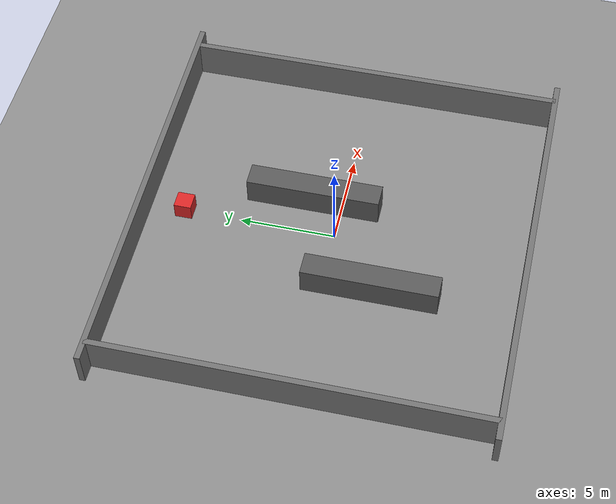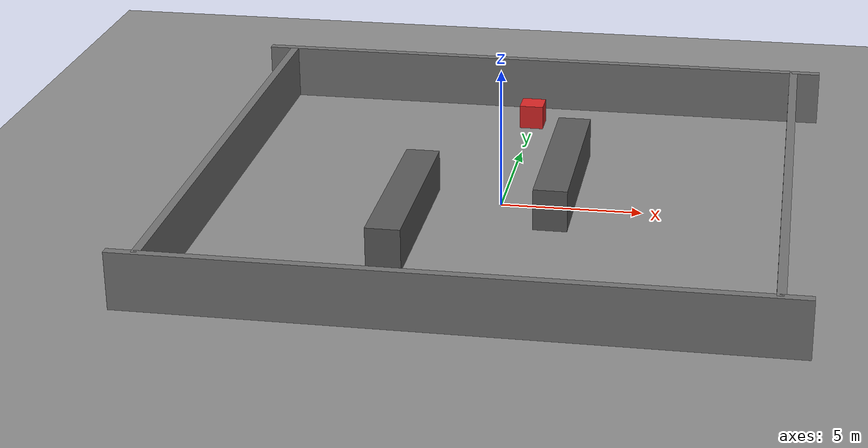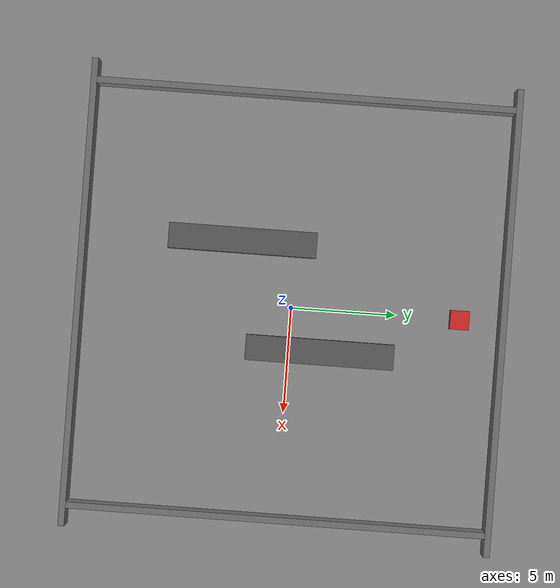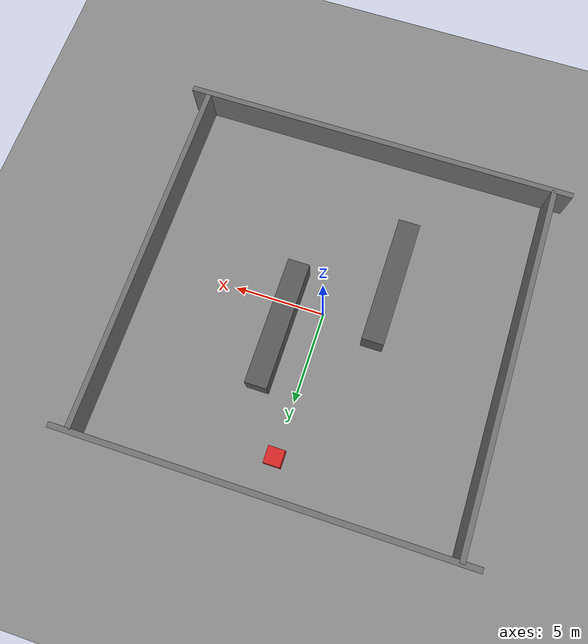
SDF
<?xml version="1.0" ?>
<sdf version="1.6">
  <world name="warehouse_lightweight">
    <gravity>0 0 -9.81</gravity>
    <physics type="ode" name="default_physics">
      <max_step_size>0.002</max_step_size>
      <real_time_factor>1.0</real_time_factor>
      <real_time_update_rate>500</real_time_update_rate>
    </physics>

    <scene>
      <ambient>0.5 0.5 0.5 1.0</ambient>
      <background>0.85 0.85 0.85 1.0</background>
      <shadows>false</shadows>
    </scene>

    <model name="ground_plane">
      <static>true</static>
      <link name="link">
        <collision name="collision">
          <geometry>
            <plane>
              <normal>0 0 1</normal>
              <size>50 50</size>
            </plane>
          </geometry>
        </collision>
        <visual name="visual">
          <geometry>
            <plane>
              <normal>0 0 1</normal>
              <size>50 50</size>
            </plane>
          </geometry>
          <material>
            <ambient>0.55 0.55 0.55 1.0</ambient>
            <diffuse>0.55 0.55 0.55 1.0</diffuse>
            <specular>0.0 0.0 0.0 1.0</specular>
          </material>
        </visual>
      </link>
    </model>

    <light name="warehouse_light" type="directional">
      <pose>0 0 12 0 0 0</pose>
      <diffuse>0.8 0.8 0.8 1.0</diffuse>
      <specular>0.1 0.1 0.1 1.0</specular>
      <direction>-0.2 0.1 -1.0</direction>
      <cast_shadows>false</cast_shadows>
    </light>

    <!-- Outer walls -->
    <model name="wall_north">
      <static>true</static>
      <pose>0 10 1.0 0 0 0</pose>
      <link name="link">
        <collision name="collision">
          <geometry><box><size>22 0.3 2.0</size></box></geometry>
        </collision>
        <visual name="visual">
          <geometry><box><size>22 0.3 2.0</size></box></geometry>
          <material><ambient>0.45 0.45 0.45 1</ambient><diffuse>0.45 0.45 0.45 1</diffuse></material>
        </visual>
      </link>
    </model>
    <model name="wall_south">
      <static>true</static>
      <pose>0 -10 1.0 0 0 0</pose>
      <link name="link">
        <collision name="collision">
          <geometry><box><size>22 0.3 2.0</size></box></geometry>
        </collision>
        <visual name="visual">
          <geometry><box><size>22 0.3 2.0</size></box></geometry>
          <material><ambient>0.45 0.45 0.45 1</ambient><diffuse>0.45 0.45 0.45 1</diffuse></material>
        </visual>
      </link>
    </model>
    <model name="wall_west">
      <static>true</static>
      <pose>-10 0 1.0 0 0 0</pose>
      <link name="link">
        <collision name="collision">
          <geometry><box><size>0.3 20 2.0</size></box></geometry>
        </collision>
        <visual name="visual">
          <geometry><box><size>0.3 20 2.0</size></box></geometry>
          <material><ambient>0.45 0.45 0.45 1</ambient><diffuse>0.45 0.45 0.45 1</diffuse></material>
        </visual>
      </link>
    </model>
    <model name="wall_east">
      <static>true</static>
      <pose>10 0 1.0 0 0 0</pose>
      <link name="link">
        <collision name="collision">
          <geometry><box><size>0.3 20 2.0</size></box></geometry>
        </collision>
        <visual name="visual">
          <geometry><box><size>0.3 20 2.0</size></box></geometry>
          <material><ambient>0.45 0.45 0.45 1</ambient><diffuse>0.45 0.45 0.45 1</diffuse></material>
        </visual>
      </link>
    </model>

    <!-- A few shelf-like obstacles (all plain gray). -->
    <model name="shelf_row_1">
      <static>true</static>
      <pose>-3.0 -2.5 0.75 0 0 0</pose>
      <link name="link">
        <collision name="collision"><geometry><box><size>1.2 7.0 1.5</size></box></geometry></collision>
        <visual name="visual"><geometry><box><size>1.2 7.0 1.5</size></box></geometry><material><ambient>0.35 0.35 0.35 1</ambient><diffuse>0.35 0.35 0.35 1</diffuse></material></visual>
      </link>
    </model>
    <model name="shelf_row_2">
      <static>true</static>
      <pose>2.0 1.5 0.75 0 0 0</pose>
      <link name="link">
        <collision name="collision"><geometry><box><size>1.2 7.0 1.5</size></box></geometry></collision>
        <visual name="visual"><geometry><box><size>1.2 7.0 1.5</size></box></geometry><material><ambient>0.35 0.35 0.35 1</ambient><diffuse>0.35 0.35 0.35 1</diffuse></material></visual>
      </link>
    </model>

    <model name="moving_center_box">
      <static>false</static>
      <pose>0.0 8.0 0.45 0 0 0</pose>
      <link name="link">
        <inertial><mass>12.0</mass></inertial>
        <collision name="collision"><geometry><box><size>0.9 0.9 0.9</size></box></geometry></collision>
        <visual name="visual"><geometry><box><size>0.9 0.9 0.9</size></box></geometry><material><ambient>0.85 0.15 0.15 1</ambient><diffuse>0.85 0.15 0.15 1</diffuse></material></visual>
      </link>
    </model>
  </world>
</sdf>
